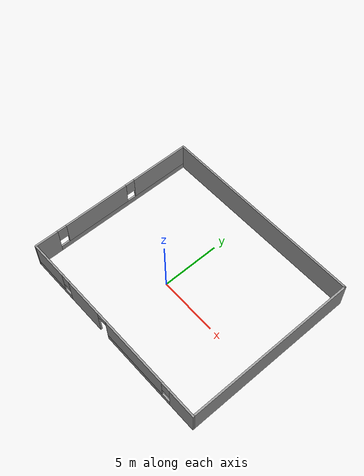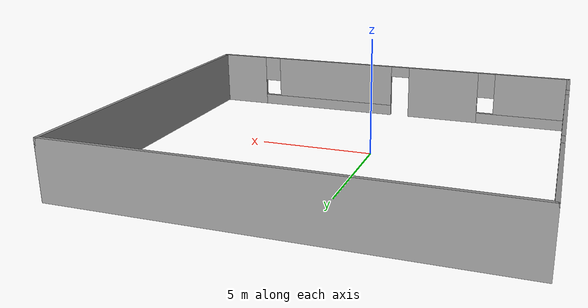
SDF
<?xml version='1.0'?>
<sdf version='1.6'>
  <model name='Room'>
    <pose frame=''>0.99729 1.30208 0 0 -0 0</pose>
    <link name='Wall_29'>
      <pose frame=''>-8.8 0 0 0 -0 1.5708</pose>
      <visual name='Wall_29_Visual_0'>
        <pose frame=''>-6.35011 0 1.25 0 -0 0</pose>
        <geometry>
          <box>
            <size>2.04977 0.15 2.5</size>
          </box>
        </geometry>
        <material>
          <script>
            <uri>file://media/materials/scripts/gazebo.material</uri>
            <name>Gazebo/Grey</name>
          </script>
          <ambient>1 1 1 1</ambient>
        </material>
        <meta>
          <layer>0</layer>
        </meta>
      </visual>
      <collision name='Wall_29_Collision_0'>
        <geometry>
          <box>
            <size>2.04977 0.15 2.5</size>
          </box>
        </geometry>
        <pose frame=''>-6.35011 0 1.25 0 -0 0</pose>
      </collision>
      <visual name='Wall_29_Visual_1'>
        <pose frame=''>1.02489 0 0.25 0 -0 0</pose>
        <geometry>
          <box>
            <size>12.7002 0.15 0.5</size>
          </box>
        </geometry>
        <material>
          <script>
            <uri>file://media/materials/scripts/gazebo.material</uri>
            <name>Gazebo/Grey</name>
          </script>
          <ambient>1 1 1 1</ambient>
        </material>
        <meta>
          <layer>0</layer>
        </meta>
      </visual>
      <collision name='Wall_29_Collision_1'>
        <geometry>
          <box>
            <size>12.7002 0.15 0.5</size>
          </box>
        </geometry>
        <pose frame=''>1.02489 0 0.25 0 -0 0</pose>
      </collision>
      <visual name='Wall_29_Visual_2'>
        <pose frame=''>-1.62225 0 1.5 0 -0 0</pose>
        <geometry>
          <box>
            <size>5.80597 0.15 2</size>
          </box>
        </geometry>
        <material>
          <script>
            <uri>file://media/materials/scripts/gazebo.material</uri>
            <name>Gazebo/Grey</name>
          </script>
          <ambient>1 1 1 1</ambient>
        </material>
        <meta>
          <layer>0</layer>
        </meta>
      </visual>
      <collision name='Wall_29_Collision_2'>
        <geometry>
          <box>
            <size>5.80597 0.15 2</size>
          </box>
        </geometry>
        <pose frame=''>-1.62225 0 1.5 0 -0 0</pose>
      </collision>
      <visual name='Wall_29_Visual_3'>
        <pose frame=''>4.72787 0 1.5 0 -0 0</pose>
        <geometry>
          <box>
            <size>5.29426 0.15 2</size>
          </box>
        </geometry>
        <material>
          <script>
            <uri>file://media/materials/scripts/gazebo.material</uri>
            <name>Gazebo/Grey</name>
          </script>
          <ambient>1 1 1 1</ambient>
        </material>
        <meta>
          <layer>0</layer>
        </meta>
      </visual>
      <collision name='Wall_29_Collision_3'>
        <geometry>
          <box>
            <size>5.29426 0.15 2</size>
          </box>
        </geometry>
        <pose frame=''>4.72787 0 1.5 0 -0 0</pose>
      </collision>
      <visual name='Wall_29_Visual_4'>
        <pose frame=''>-4.92523 0 1.9 0 -0 0</pose>
        <geometry>
          <box>
            <size>0.8 0.15 1.2</size>
          </box>
        </geometry>
        <material>
          <script>
            <uri>file://media/materials/scripts/gazebo.material</uri>
            <name>Gazebo/Grey</name>
          </script>
          <ambient>1 1 1 1</ambient>
        </material>
        <meta>
          <layer>0</layer>
        </meta>
      </visual>
      <collision name='Wall_29_Collision_4'>
        <geometry>
          <box>
            <size>0.8 0.15 1.2</size>
          </box>
        </geometry>
        <pose frame=''>-4.92523 0 1.9 0 -0 0</pose>
      </collision>
      <visual name='Wall_29_Visual_5'>
        <pose frame=''>1.68074 0 1.9 0 -0 0</pose>
        <geometry>
          <box>
            <size>0.8 0.15 1.2</size>
          </box>
        </geometry>
        <material>
          <script>
            <uri>file://media/materials/scripts/gazebo.material</uri>
            <name>Gazebo/Grey</name>
          </script>
          <ambient>1 1 1 1</ambient>
        </material>
        <meta>
          <layer>0</layer>
        </meta>
      </visual>
      <collision name='Wall_29_Collision_5'>
        <geometry>
          <box>
            <size>0.8 0.15 1.2</size>
          </box>
        </geometry>
        <pose frame=''>1.68074 0 1.9 0 -0 0</pose>
      </collision>
    </link>
    <link name='Wall_32'>
      <collision name='Wall_32_Collision'>
        <geometry>
          <box>
            <size>17.75 0.15 2.5</size>
          </box>
        </geometry>
        <pose frame=''>0 0 1.25 0 -0 0</pose>
      </collision>
      <visual name='Wall_32_Visual'>
        <pose frame=''>0 0 1.25 0 -0 0</pose>
        <geometry>
          <box>
            <size>17.75 0.15 2.5</size>
          </box>
        </geometry>
        <material>
          <script>
            <uri>file://media/materials/scripts/gazebo.material</uri>
            <name>Gazebo/Grey</name>
          </script>
          <ambient>1 1 1 1</ambient>
        </material>
        <meta>
          <layer>0</layer>
        </meta>
      </visual>
      <pose frame=''>-0 7.3 0 0 -0 0</pose>
    </link>
    <link name='Wall_33'>
      <collision name='Wall_33_Collision'>
        <geometry>
          <box>
            <size>14.75 0.15 2.5</size>
          </box>
        </geometry>
        <pose frame=''>0 0 1.25 0 -0 0</pose>
      </collision>
      <visual name='Wall_33_Visual'>
        <pose frame=''>0 0 1.25 0 -0 0</pose>
        <geometry>
          <box>
            <size>14.75 0.15 2.5</size>
          </box>
        </geometry>
        <material>
          <script>
            <uri>file://media/materials/scripts/gazebo.material</uri>
            <name>Gazebo/Grey</name>
          </script>
          <ambient>1 1 1 1</ambient>
        </material>
        <meta>
          <layer>0</layer>
        </meta>
      </visual>
      <pose frame=''>8.8 0 0 0 -0 -1.5708</pose>
    </link>
    <link name='Wall_34'>
      <pose frame=''>-0 -7.3 0 0 -0 3.14159</pose>
      <visual name='Wall_34_Visual_0'>
        <pose frame=''>-7.67742 0 1.25 0 -0 0</pose>
        <geometry>
          <box>
            <size>2.39516 0.15 2.5</size>
          </box>
        </geometry>
        <material>
          <script>
            <uri>file://media/materials/scripts/gazebo.material</uri>
            <name>Gazebo/Grey</name>
          </script>
          <ambient>1 1 1 1</ambient>
        </material>
        <meta>
          <layer>0</layer>
        </meta>
      </visual>
      <collision name='Wall_34_Collision_0'>
        <geometry>
          <box>
            <size>2.39516 0.15 2.5</size>
          </box>
        </geometry>
        <pose frame=''>-7.67742 0 1.25 0 -0 0</pose>
      </collision>
      <visual name='Wall_34_Visual_1'>
        <pose frame=''>2.95487 0 1.25 0 -0 0</pose>
        <geometry>
          <box>
            <size>3.4041 0.15 2.5</size>
          </box>
        </geometry>
        <material>
          <script>
            <uri>file://media/materials/scripts/gazebo.material</uri>
            <name>Gazebo/Grey</name>
          </script>
          <ambient>1 1 1 1</ambient>
        </material>
        <meta>
          <layer>0</layer>
        </meta>
      </visual>
      <collision name='Wall_34_Collision_1'>
        <geometry>
          <box>
            <size>3.4041 0.15 2.5</size>
          </box>
        </geometry>
        <pose frame=''>2.95487 0 1.25 0 -0 0</pose>
      </collision>
      <visual name='Wall_34_Visual_2'>
        <pose frame=''>-3.06351 0 0.25 0 -0 0</pose>
        <geometry>
          <box>
            <size>6.83266 0.15 0.5</size>
          </box>
        </geometry>
        <material>
          <script>
            <uri>file://media/materials/scripts/gazebo.material</uri>
            <name>Gazebo/Grey</name>
          </script>
          <ambient>1 1 1 1</ambient>
        </material>
        <meta>
          <layer>0</layer>
        </meta>
      </visual>
      <collision name='Wall_34_Collision_2'>
        <geometry>
          <box>
            <size>6.83266 0.15 0.5</size>
          </box>
        </geometry>
        <pose frame=''>-3.06351 0 0.25 0 -0 0</pose>
      </collision>
      <visual name='Wall_34_Visual_3'>
        <pose frame=''>6.76596 0 0.25 0 -0 0</pose>
        <geometry>
          <box>
            <size>4.21808 0.15 0.5</size>
          </box>
        </geometry>
        <material>
          <script>
            <uri>file://media/materials/scripts/gazebo.material</uri>
            <name>Gazebo/Grey</name>
          </script>
          <ambient>1 1 1 1</ambient>
        </material>
        <meta>
          <layer>0</layer>
        </meta>
      </visual>
      <collision name='Wall_34_Collision_3'>
        <geometry>
          <box>
            <size>4.21808 0.15 0.5</size>
          </box>
        </geometry>
        <pose frame=''>6.76596 0 0.25 0 -0 0</pose>
      </collision>
      <visual name='Wall_34_Visual_4'>
        <pose frame=''>-2.66351 0 1.5 0 -0 0</pose>
        <geometry>
          <box>
            <size>6.03266 0.15 2</size>
          </box>
        </geometry>
        <material>
          <script>
            <uri>file://media/materials/scripts/gazebo.material</uri>
            <name>Gazebo/Grey</name>
          </script>
          <ambient>1 1 1 1</ambient>
        </material>
        <meta>
          <layer>0</layer>
        </meta>
      </visual>
      <collision name='Wall_34_Collision_4'>
        <geometry>
          <box>
            <size>6.03266 0.15 2</size>
          </box>
        </geometry>
        <pose frame=''>-2.66351 0 1.5 0 -0 0</pose>
      </collision>
      <visual name='Wall_34_Visual_5'>
        <pose frame=''>-2.66351 0 1.5 0 -0 0</pose>
        <geometry>
          <box>
            <size>6.03266 0.15 2</size>
          </box>
        </geometry>
        <material>
          <script>
            <uri>file://media/materials/scripts/gazebo.material</uri>
            <name>Gazebo/Grey</name>
          </script>
          <ambient>1 1 1 1</ambient>
        </material>
        <meta>
          <layer>0</layer>
        </meta>
      </visual>
      <collision name='Wall_34_Collision_5'>
        <geometry>
          <box>
            <size>6.03266 0.15 2</size>
          </box>
        </geometry>
        <pose frame=''>-2.66351 0 1.5 0 -0 0</pose>
      </collision>
      <visual name='Wall_34_Visual_6'>
        <pose frame=''>7.16596 0 1.5 0 -0 0</pose>
        <geometry>
          <box>
            <size>3.41808 0.15 2</size>
          </box>
        </geometry>
        <material>
          <script>
            <uri>file://media/materials/scripts/gazebo.material</uri>
            <name>Gazebo/Grey</name>
          </script>
          <ambient>1 1 1 1</ambient>
        </material>
        <meta>
          <layer>0</layer>
        </meta>
      </visual>
      <collision name='Wall_34_Collision_6'>
        <geometry>
          <box>
            <size>3.41808 0.15 2</size>
          </box>
        </geometry>
        <pose frame=''>7.16596 0 1.5 0 -0 0</pose>
      </collision>
      <visual name='Wall_34_Visual_7'>
        <pose frame=''>-6.07984 0 1.9 0 -0 0</pose>
        <geometry>
          <box>
            <size>0.8 0.15 1.2</size>
          </box>
        </geometry>
        <material>
          <script>
            <uri>file://media/materials/scripts/gazebo.material</uri>
            <name>Gazebo/Grey</name>
          </script>
          <ambient>1 1 1 1</ambient>
        </material>
        <meta>
          <layer>0</layer>
        </meta>
      </visual>
      <collision name='Wall_34_Collision_7'>
        <geometry>
          <box>
            <size>0.8 0.15 1.2</size>
          </box>
        </geometry>
        <pose frame=''>-6.07984 0 1.9 0 -0 0</pose>
      </collision>
      <visual name='Wall_34_Visual_8'>
        <pose frame=''>5.05692 0 1.9 0 -0 0</pose>
        <geometry>
          <box>
            <size>0.8 0.15 1.2</size>
          </box>
        </geometry>
        <material>
          <script>
            <uri>file://media/materials/scripts/gazebo.material</uri>
            <name>Gazebo/Grey</name>
          </script>
          <ambient>1 1 1 1</ambient>
        </material>
        <meta>
          <layer>0</layer>
        </meta>
      </visual>
      <collision name='Wall_34_Collision_8'>
        <geometry>
          <box>
            <size>0.8 0.15 1.2</size>
          </box>
        </geometry>
        <pose frame=''>5.05692 0 1.9 0 -0 0</pose>
      </collision>
      <visual name='Wall_34_Visual_9'>
        <pose frame=''>0.802815 0 2.25 0 -0 0</pose>
        <geometry>
          <box>
            <size>0.9 0.15 0.5</size>
          </box>
        </geometry>
        <material>
          <script>
            <uri>file://media/materials/scripts/gazebo.material</uri>
            <name>Gazebo/Grey</name>
          </script>
          <ambient>1 1 1 1</ambient>
        </material>
        <meta>
          <layer>0</layer>
        </meta>
      </visual>
      <collision name='Wall_34_Collision_9'>
        <geometry>
          <box>
            <size>0.9 0.15 0.5</size>
          </box>
        </geometry>
        <pose frame=''>0.802815 0 2.25 0 -0 0</pose>
      </collision>
      <visual name='Wall_34_Visual_10'>
        <pose frame=''>0.802815 0 2.25 0 -0 0</pose>
        <geometry>
          <box>
            <size>0.9 0.15 0.5</size>
          </box>
        </geometry>
        <material>
          <script>
            <uri>file://media/materials/scripts/gazebo.material</uri>
            <name>Gazebo/Grey</name>
          </script>
          <ambient>1 1 1 1</ambient>
        </material>
        <meta>
          <layer>0</layer>
        </meta>
      </visual>
      <collision name='Wall_34_Collision_10'>
        <geometry>
          <box>
            <size>0.9 0.15 0.5</size>
          </box>
        </geometry>
        <pose frame=''>0.802815 0 2.25 0 -0 0</pose>
      </collision>
    </link>
    <static>1</static>
  </model>
</sdf>
